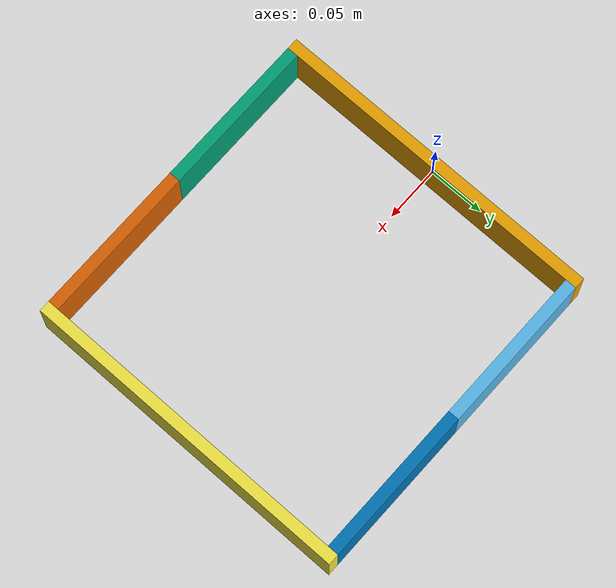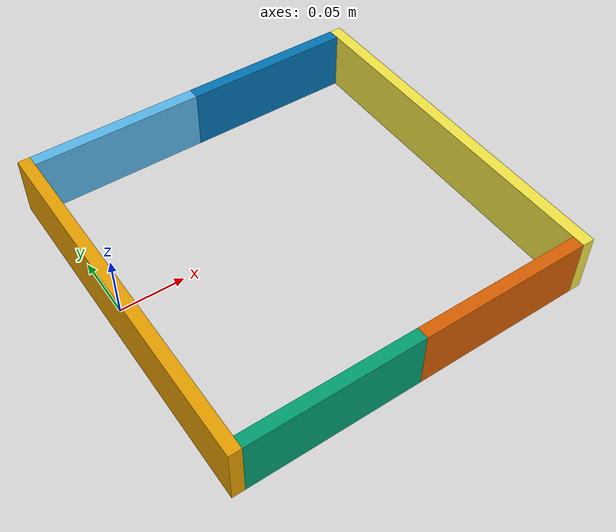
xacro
<?xml version="1.0"?>
<robot name="gripper"
       xmlns:xacro="http://ros.org/wiki/xacro">

  <!-- Constants for robot dimensions -->
  <xacro:property name="pi" value="3.14159265359" />
  <xacro:property name="cone_radius" value=".14" />

  <xacro:property name="gripper_thickness" value=".01" />
  <xacro:property name="gripper_height" value=".05" />
  <xacro:property name="gripper_wide_block_width" value="${2 * (cone_radius + gripper_thickness)}" />
  <xacro:property name="gripper_side_block_width" value="${1 * cone_radius}" />

  <xacro:property name="gripper_material_density" value="2700" />
  <xacro:property name="gripper_wide_block_mass" value="${gripper_material_density * gripper_wide_block_width * gripper_thickness * gripper_height}" />
  <xacro:property name="gripper_side_block_mass" value="${gripper_material_density * gripper_side_block_width * gripper_thickness * gripper_height}" />

  <!-- Macro for cuboid mass moment of inertia -->
  <xacro:macro name="cuboid_moment_of_inertia" params="m d1 d2 d3">
    <inertia ixx="${m * (d2 * d2 + d3 * d3) / 12}" ixy="0.0" ixz="0.0"
	     iyy="${m * (d1 * d1 + d3 * d3) / 12}" iyz="0.0"
	     izz="${m * (d1 * d1 + d2 * d2) / 12}" />
  </xacro:macro>

  <!-- Macro for gripper wide block -->
  <xacro:macro name="gripper_wide_block" params="suffix">
    <link name="gripper_wide_block_${suffix}">
      <visual>
	<geometry>
	  <box size="${gripper_thickness} ${gripper_wide_block_width} ${gripper_height}" />
	</geometry>
      </visual>

      <collision>
	<geometry>
	  <box size="${gripper_thickness} ${gripper_wide_block_width} ${gripper_height}" />
	</geometry>
      </collision>

      <inertial>
	<mass value="${gripper_wide_block_mass}" />
	<xacro:cuboid_moment_of_inertia m="${gripper_wide_block_mass}" d1="${gripper_thickness}" d2="${gripper_wide_block_width}" d3="${gripper_height}" />
      </inertial>
    </link>
  </xacro:macro>

  <!-- Macro for gripper side block -->
  <xacro:macro name="gripper_side_block" params="suffix">
  <link name="gripper_side_block_${suffix}">
    <visual>
      <geometry>
	<box size="${gripper_side_block_width} ${gripper_thickness} ${gripper_height}" />
      </geometry>
    </visual>

    <collision name="collision">
      <geometry>
	<box size="${gripper_side_block_width} ${gripper_thickness} ${gripper_height}" />
      </geometry>
    </collision>

    <inertial>
      <mass value="${gripper_side_block_mass}" />
      <xacro:cuboid_moment_of_inertia m="${gripper_side_block_mass}" d1="${gripper_side_block_width}" d2="${gripper_thickness}" d3="${gripper_height}" />
    </inertial>
  </link>
  </xacro:macro>

  <!-- Macro for fixed joints -->
  <xacro:macro name="block_fixed_joints" params="suffix x y parent_suffix child_suffix">
    <joint name="block_fixed_joint_${suffix}" type="fixed">
      <origin xyz="${x} ${y} 0" rpy="0 0 0" />
      <parent link="gripper_wide_block_${parent_suffix}" />
      <child link="gripper_side_block_${child_suffix}" />
    </joint>
  </xacro:macro>

  <!-- Cuboids constituting gripper -->
  <xacro:gripper_wide_block suffix="p" />
  <xacro:gripper_side_block suffix="p1" />
  <xacro:gripper_side_block suffix="p2" />
  <xacro:gripper_wide_block suffix="d" />
  <xacro:gripper_side_block suffix="d1" />
  <xacro:gripper_side_block suffix="d2" />

  <!-- Fixed joints for gripper halves -->
  <xacro:block_fixed_joints suffix="p1" x="${(gripper_side_block_width + gripper_thickness) / 2}" y="${(gripper_wide_block_width - gripper_thickness) / 2}"
			    parent_suffix="p" child_suffix="p1" />
  <xacro:block_fixed_joints suffix="p2" x="${(gripper_side_block_width + gripper_thickness) / 2}" y="${-(gripper_wide_block_width - gripper_thickness) / 2}"
			    parent_suffix="p" child_suffix="p2" />
  <xacro:block_fixed_joints suffix="d1" x="${-(gripper_side_block_width + gripper_thickness) / 2}" y="${(gripper_wide_block_width - gripper_thickness) / 2}"
			    parent_suffix="d" child_suffix="d1" />
  <xacro:block_fixed_joints suffix="d2" x="${-(gripper_side_block_width + gripper_thickness) / 2}" y="${-(gripper_wide_block_width - gripper_thickness) / 2}"
			    parent_suffix="d" child_suffix="d2" />

  <!-- Prismatic joint -->
  <joint name="gripper_joint" type="prismatic">
    <origin xyz="${2 * gripper_side_block_width + gripper_thickness} 0 0" rpy="0 0 0" />
    <parent link="gripper_wide_block_p" />
    <child link="gripper_wide_block_d" />
    <limit effort="1000.0" lower="-100" upper="100" velocity="0.5"/>
  </joint>

  <transmission name="gripper_joint_transmission">
    <type>transmission_interface/SimpleTransmission</type>
    <joint name="gripper_joint">
      <hardwareInterface>hardware_interface/EffortJointInterface</hardwareInterface>
    </joint>
    <actuator name="motor1">
      <hardwareInterface>hardware_interface/EffortJointInterface</hardwareInterface>
      <mechanicalReduction>1</mechanicalReduction>
    </actuator>
  </transmission>

  <gazebo>
    <plugin name="gazebo_ros_control" filename="libgazebo_ros_control.so">
      <robotNamespace>/gripper</robotNamespace>
    </plugin>
  </gazebo>

</robot>
